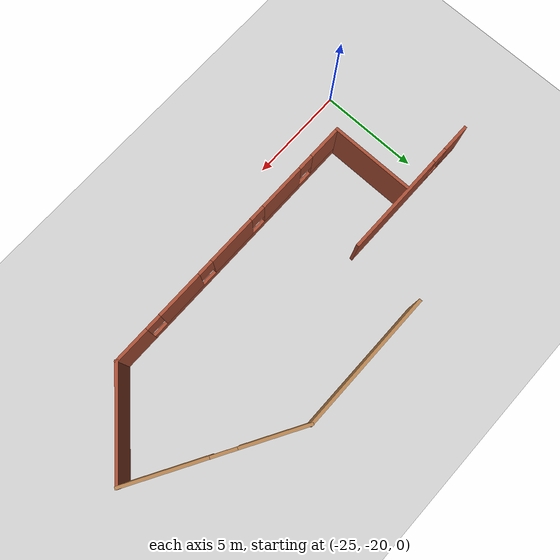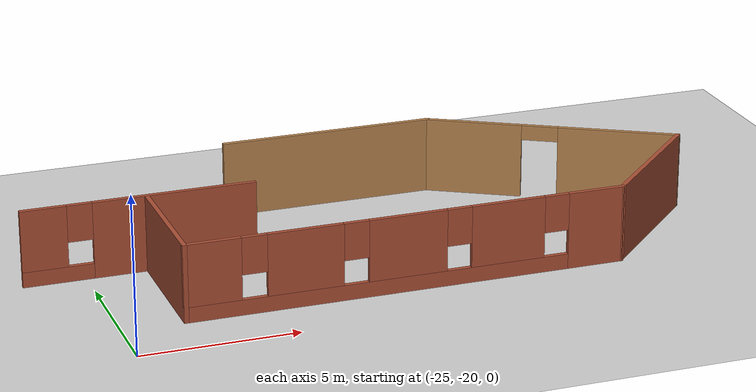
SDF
<sdf version="1.6">
 <world name="default">
  <model name="ground_plane">
   <static>1</static>
   <link name="link">
    <collision name="collision">
     <geometry><plane><normal>0 0 1</normal><size>100 100</size></plane></geometry>
     <surface><friction><ode><mu>100</mu><mu2>50</mu2></ode></friction></surface>
    </collision>
    <visual name="visual">
     <cast_shadows>0</cast_shadows>
     <geometry><plane><normal>0 0 1</normal><size>100 100</size></plane></geometry>
     <material>
      <script><uri>file://media/materials/scripts/gazebo.material</uri><name>Gazebo/Grey</name></script>
     </material>
    </visual>
   </link>
  </model>
  <model name="spiral_office">
   <link name="Wall_23">
    <collision name="Wall_23_Collision">
     <geometry><box><size>5.25 0.15 2.5</size></box></geometry>
     <pose>0 0 1.25 0 -0 0</pose>
    </collision>
    <visual name="Wall_23_Visual">
     <pose>0 0 1.25 0 -0 0</pose>
     <geometry><box><size>5.25 0.15 2.5</size></box></geometry>
     <material>
      <script><uri>file://media/materials/scripts/gazebo.material</uri><name>Gazebo/Bricks</name></script>
      <ambient>1 1 1 1</ambient>
     </material>
     <meta><layer>0</layer></meta>
    </visual>
    <pose>-7.11801 -16.3667 0 0 0 -2.35619</pose>
   </link>
   <link name="Wall_24">
    <pose>-15.9711 -18.1698 0 0 -0 3.14159</pose>
    <visual name="Wall_24_Visual_0">
     <pose>-6.17797 0 1.25 0 -0 0</pose>
     <geometry><box><size>1.89406 0.15 2.5</size></box></geometry>
     <material>
      <script><uri>file://media/materials/scripts/gazebo.material</uri><name>Gazebo/Bricks</name></script>
      <ambient>1 1 1 1</ambient>
     </material>
     <meta><layer>0</layer></meta>
    </visual>
    <collision name="Wall_24_Collision_0">
     <geometry><box><size>1.89406 0.15 2.5</size></box></geometry>
     <pose>-6.17797 0 1.25 0 -0 0</pose>
    </collision>
    <visual name="Wall_24_Visual_1">
     <pose>0.947032 0 0.25 0 -0 0</pose>
     <geometry><box><size>12.3559 0.15 0.5</size></box></geometry>
     <material>
      <script><uri>file://media/materials/scripts/gazebo.material</uri><name>Gazebo/Bricks</name></script>
      <ambient>1 1 1 1</ambient>
     </material>
     <meta><layer>0</layer></meta>
    </visual>
    <collision name="Wall_24_Collision_1">
     <geometry><box><size>12.3559 0.15 0.5</size></box></geometry>
     <pose>0.947032 0 0.25 0 -0 0</pose>
    </collision>
    <visual name="Wall_24_Visual_2">
     <pose>-3.22586 0 1.5 0 -0 0</pose>
     <geometry><box><size>2.41015 0.15 2</size></box></geometry>
     <material>
      <script><uri>file://media/materials/scripts/gazebo.material</uri><name>Gazebo/Bricks</name></script>
      <ambient>1 1 1 1</ambient>
     </material>
     <meta><layer>0</layer></meta>
    </visual>
    <collision name="Wall_24_Collision_2">
     <geometry><box><size>2.41015 0.15 2</size></box></geometry>
     <pose>-3.22586 0 1.5 0 -0 0</pose>
    </collision>
    <visual name="Wall_24_Visual_3">
     <pose>0.037792 0 1.5 0 -0 0</pose>
     <geometry><box><size>2.51715 0.15 2</size></box></geometry>
     <material>
      <script><uri>file://media/materials/scripts/gazebo.material</uri><name>Gazebo/Bricks</name></script>
      <ambient>1 1 1 1</ambient>
     </material>
     <meta><layer>0</layer></meta>
    </visual>
    <collision name="Wall_24_Collision_3">
     <geometry><box><size>2.51715 0.15 2</size></box></geometry>
     <pose>0.037792 0 1.5 0 -0 0</pose>
    </collision>
    <visual name="Wall_24_Visual_4">
     <pose>3.30145 0 1.5 0 -0 0</pose>
     <geometry><box><size>2.41015 0.15 2</size></box></geometry>
     <material>
      <script><uri>file://media/materials/scripts/gazebo.material</uri><name>Gazebo/Bricks</name></script>
      <ambient>1 1 1 1</ambient>
     </material>
     <meta><layer>0</layer></meta>
    </visual>
    <collision name="Wall_24_Collision_4">
     <geometry><box><size>2.41015 0.15 2</size></box></geometry>
     <pose>3.30145 0 1.5 0 -0 0</pose>
    </collision>
    <visual name="Wall_24_Visual_5">
     <pose>6.21576 0 1.5 0 -0 0</pose>
     <geometry><box><size>1.81848 0.15 2</size></box></geometry>
     <material>
      <script><uri>file://media/materials/scripts/gazebo.material</uri><name>Gazebo/Bricks</name></script>
      <ambient>1 1 1 1</ambient>
     </material>
     <meta><layer>0</layer></meta>
    </visual>
    <collision name="Wall_24_Collision_5">
     <geometry><box><size>1.81848 0.15 2</size></box></geometry>
     <pose>6.21576 0 1.5 0 -0 0</pose>
    </collision>
    <visual name="Wall_24_Visual_6">
     <pose>-4.83094 0 1.9 0 -0 0</pose>
     <geometry><box><size>0.8 0.15 1.2</size></box></geometry>
     <material>
      <script><uri>file://media/materials/scripts/gazebo.material</uri><name>Gazebo/Bricks</name></script>
      <ambient>1 1 1 1</ambient>
     </material>
     <meta><layer>0</layer></meta>
    </visual>
    <collision name="Wall_24_Collision_6">
     <geometry><box><size>0.8 0.15 1.2</size></box></geometry>
     <pose>-4.83094 0 1.9 0 -0 0</pose>
    </collision>
    <visual name="Wall_24_Visual_7">
     <pose>-1.62078 0 1.9 0 -0 0</pose>
     <geometry><box><size>0.8 0.15 1.2</size></box></geometry>
     <material>
      <script><uri>file://media/materials/scripts/gazebo.material</uri><name>Gazebo/Bricks</name></script>
      <ambient>1 1 1 1</ambient>
     </material>
     <meta><layer>0</layer></meta>
    </visual>
    <collision name="Wall_24_Collision_7">
     <geometry><box><size>0.8 0.15 1.2</size></box></geometry>
     <pose>-1.62078 0 1.9 0 -0 0</pose>
    </collision>
    <visual name="Wall_24_Visual_8">
     <pose>1.69637 0 1.9 0 -0 0</pose>
     <geometry><box><size>0.8 0.15 1.2</size></box></geometry>
     <material>
      <script><uri>file://media/materials/scripts/gazebo.material</uri><name>Gazebo/Bricks</name></script>
      <ambient>1 1 1 1</ambient>
     </material>
     <meta><layer>0</layer></meta>
    </visual>
    <collision name="Wall_24_Collision_8">
     <geometry><box><size>0.8 0.15 1.2</size></box></geometry>
     <pose>1.69637 0 1.9 0 -0 0</pose>
    </collision>
    <visual name="Wall_24_Visual_9">
     <pose>4.90652 0 1.9 0 -0 0</pose>
     <geometry><box><size>0.8 0.15 1.2</size></box></geometry>
     <material>
      <script><uri>file://media/materials/scripts/gazebo.material</uri><name>Gazebo/Bricks</name></script>
      <ambient>1 1 1 1</ambient>
     </material>
     <meta><layer>0</layer></meta>
    </visual>
    <collision name="Wall_24_Collision_9">
     <geometry><box><size>0.8 0.15 1.2</size></box></geometry>
     <pose>4.90652 0 1.9 0 -0 0</pose>
    </collision>
   </link>
   <link name="Wall_25">
    <collision name="Wall_25_Collision">
     <geometry><box><size>4.25 0.15 2.5</size></box></geometry>
     <pose>0 0 1.25 0 -0 0</pose>
    </collision>
    <visual name="Wall_25_Visual">
     <pose>0 0 1.25 0 -0 0</pose>
     <geometry><box><size>4.25 0.15 2.5</size></box></geometry>
     <material>
      <script><uri>file://media/materials/scripts/gazebo.material</uri><name>Gazebo/Bricks</name></script>
      <ambient>1 1 1 1</ambient>
     </material>
     <meta><layer>0</layer></meta>
    </visual>
    <pose>-23.0211 -16.1198 0 0 -0 1.5708</pose>
   </link>
   <link name="Wall_27">
    <pose>-8.9041 -12.476 0 0 -0 2.61479</pose>
    <visual name="Wall_27_Visual_0">
     <pose>-2.23349 0 1.25 0 -0 0</pose>
     <geometry><box><size>3.98736 0.15 2.5</size></box></geometry>
     <material>
      <script><uri>file://media/materials/scripts/gazebo.material</uri><name>Gazebo/Wood</name></script>
      <ambient>1 1 1 1</ambient>
     </material>
     <meta><layer>0</layer></meta>
    </visual>
    <collision name="Wall_27_Collision_0">
     <geometry><box><size>3.98736 0.15 2.5</size></box></geometry>
     <pose>-2.23349 0 1.25 0 -0 0</pose>
    </collision>
    <visual name="Wall_27_Visual_1">
     <pose>2.59368 0 1.25 0 -0 0</pose>
     <geometry><box><size>3.26697 0.15 2.5</size></box></geometry>
     <material>
      <script><uri>file://media/materials/scripts/gazebo.material</uri><name>Gazebo/Wood</name></script>
      <ambient>1 1 1 1</ambient>
     </material>
     <meta><layer>0</layer></meta>
    </visual>
    <collision name="Wall_27_Collision_1">
     <geometry><box><size>3.26697 0.15 2.5</size></box></geometry>
     <pose>2.59368 0 1.25 0 -0 0</pose>
    </collision>
    <visual name="Wall_27_Visual_2">
     <pose>0.360193 0 2.25 0 -0 0</pose>
     <geometry><box><size>1.2 0.15 0.5</size></box></geometry>
     <material>
      <script><uri>file://media/materials/scripts/gazebo.material</uri><name>Gazebo/Wood</name></script>
      <ambient>1 1 1 1</ambient>
     </material>
     <meta><layer>0</layer></meta>
    </visual>
    <collision name="Wall_27_Collision_2">
     <geometry><box><size>1.2 0.15 0.5</size></box></geometry>
     <pose>0.360193 0 2.25 0 -0 0</pose>
    </collision>
   </link>
   <link name="Wall_28">
    <collision name="Wall_28_Collision">
     <geometry><box><size>7.1 0.15 2.5</size></box></geometry>
     <pose>0 0 1.25 0 -0 0</pose>
    </collision>
    <visual name="Wall_28_Visual">
     <pose>0 0 1.25 0 -0 0</pose>
     <geometry><box><size>7.1 0.15 2.5</size></box></geometry>
     <material>
      <script><uri>file://media/materials/scripts/gazebo.material</uri><name>Gazebo/Wood</name></script>
      <ambient>1 1 1 1</ambient>
     </material>
     <meta><layer>0</layer></meta>
    </visual>
    <pose>-15.9683 -10.3884 0 0 -0 3.14159</pose>
   </link>
   <link name="Wall_6">
    <pose>-23.2596 -13.9494 0 0 -0 3.14159</pose>
    <visual name="Wall_6_Visual_0">
     <pose>-1.12907 0 1.25 0 -0 0</pose>
     <geometry><box><size>5.24185 0.15 2.5</size></box></geometry>
     <material>
      <script><uri>file://media/materials/scripts/gazebo.material</uri><name>Gazebo/Bricks</name></script>
      <ambient>1 1 1 1</ambient>
     </material>
     <meta><layer>0</layer></meta>
    </visual>
    <collision name="Wall_6_Collision_0">
     <geometry><box><size>5.24185 0.15 2.5</size></box></geometry>
     <pose>-1.12907 0 1.25 0 -0 0</pose>
    </collision>
    <visual name="Wall_6_Visual_1">
     <pose>2.62093 0 0.25 0 -0 0</pose>
     <geometry><box><size>2.25815 0.15 0.5</size></box></geometry>
     <material>
      <script><uri>file://media/materials/scripts/gazebo.material</uri><name>Gazebo/Bricks</name></script>
      <ambient>1 1 1 1</ambient>
     </material>
     <meta><layer>0</layer></meta>
    </visual>
    <collision name="Wall_6_Collision_1">
     <geometry><box><size>2.25815 0.15 0.5</size></box></geometry>
     <pose>2.62093 0 0.25 0 -0 0</pose>
    </collision>
    <visual name="Wall_6_Visual_2">
     <pose>3.02093 0 1.5 0 -0 0</pose>
     <geometry><box><size>1.45815 0.15 2</size></box></geometry>
     <material>
      <script><uri>file://media/materials/scripts/gazebo.material</uri><name>Gazebo/Bricks</name></script>
      <ambient>1 1 1 1</ambient>
     </material>
     <meta><layer>0</layer></meta>
    </visual>
    <collision name="Wall_6_Collision_2">
     <geometry><box><size>1.45815 0.15 2</size></box></geometry>
     <pose>3.02093 0 1.5 0 -0 0</pose>
    </collision>
    <visual name="Wall_6_Visual_3">
     <pose>1.89185 0 1.9 0 -0 0</pose>
     <geometry><box><size>0.8 0.15 1.2</size></box></geometry>
     <material>
      <script><uri>file://media/materials/scripts/gazebo.material</uri><name>Gazebo/Bricks</name></script>
      <ambient>1 1 1 1</ambient>
     </material>
     <meta><layer>0</layer></meta>
    </visual>
    <collision name="Wall_6_Collision_3">
     <geometry><box><size>0.8 0.15 1.2</size></box></geometry>
     <pose>1.89185 0 1.9 0 -0 0</pose>
    </collision>
   </link>
   <static>1</static>
  </model>
 </world>
</sdf>
